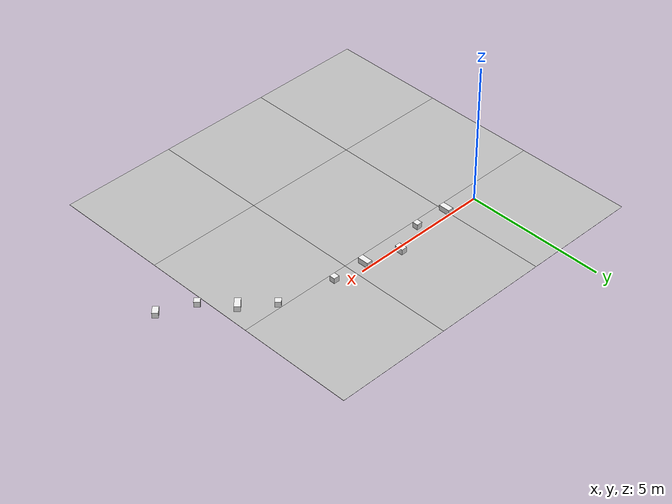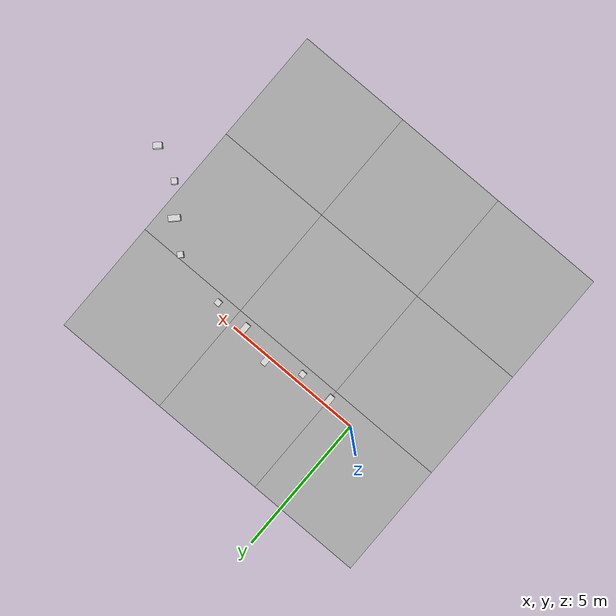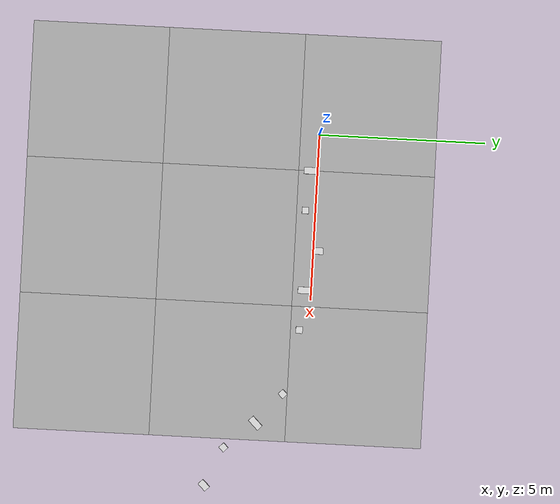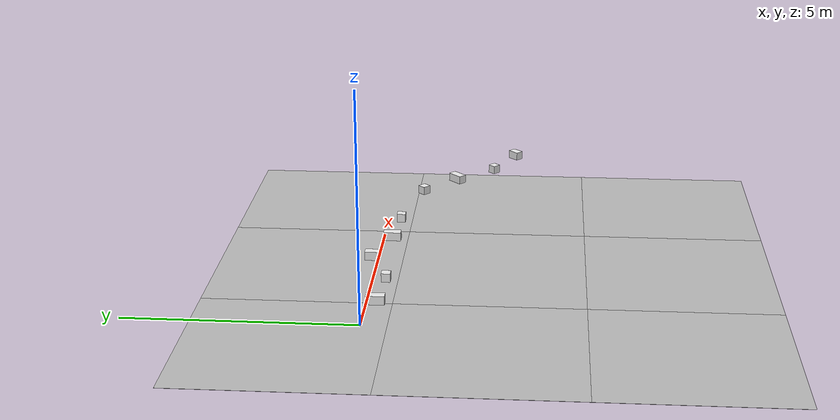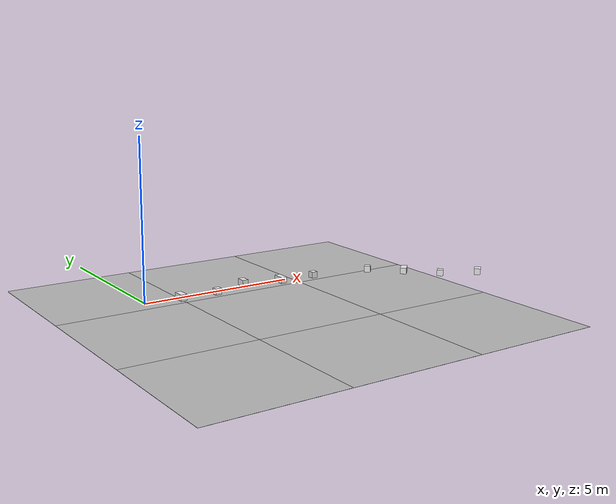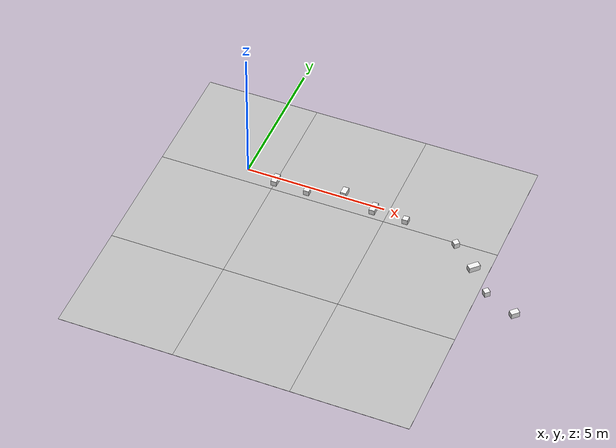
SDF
<sdf version="1.6">
 <world name="default">
  <model name="Tile/0-0">
   <static>1</static>
   <link name="link">
    <collision name="collision">
     <geometry><plane><normal>0 0 1</normal><size>4.096 4.096</size></plane></geometry>
     <surface><friction><ode><mu>100</mu><mu2>50</mu2></ode></friction></surface>
    </collision>
    <visual name="visual">
     <cast_shadows>0</cast_shadows>
     <geometry><plane><normal>0 0 1</normal><size>4.096 4.096</size></plane></geometry>
     <material>
      <script>
       <uri>file://materials/scripts</uri>
       <uri>file://materials/textures</uri>
       <name>Tile/5eab350b8220ac9944dbdfa4ac3288c7c17e24c3bf5df0dfcf6173d64dae00a1</name>
      </script>
     </material>
    </visual>
   </link>
   <pose>-0.952 -6.705231160202137 0 0 -0 0</pose>
  </model>
  <model name="Tile/0-1">
   <static>1</static>
   <link name="link">
    <collision name="collision">
     <geometry><plane><normal>0 0 1</normal><size>4.096 4.096</size></plane></geometry>
     <surface><friction><ode><mu>100</mu><mu2>50</mu2></ode></friction></surface>
    </collision>
    <visual name="visual">
     <cast_shadows>0</cast_shadows>
     <geometry><plane><normal>0 0 1</normal><size>4.096 4.096</size></plane></geometry>
     <material>
      <script>
       <uri>file://materials/scripts</uri>
       <uri>file://materials/textures</uri>
       <name>Tile/5eab350b8220ac9944dbdfa4ac3288c7c17e24c3bf5df0dfcf6173d64dae00a1</name>
      </script>
     </material>
    </visual>
   </link>
   <pose>-0.952 -2.609231160202137 0 0 -0 0</pose>
  </model>
  <model name="Tile/0-2">
   <static>1</static>
   <link name="link">
    <collision name="collision">
     <geometry><plane><normal>0 0 1</normal><size>4.096 4.096</size></plane></geometry>
     <surface><friction><ode><mu>100</mu><mu2>50</mu2></ode></friction></surface>
    </collision>
    <visual name="visual">
     <cast_shadows>0</cast_shadows>
     <geometry><plane><normal>0 0 1</normal><size>4.096 4.096</size></plane></geometry>
     <material>
      <script>
       <uri>file://materials/scripts</uri>
       <uri>file://materials/textures</uri>
       <name>Tile/40d8efbcd66bd65f30f8d94b505f15b764506128f2aa5581322fffdcda78869f</name>
      </script>
     </material>
    </visual>
   </link>
   <pose>-0.952 1.486768839797863 0 0 -0 0</pose>
  </model>
  <model name="Tile/1-0">
   <static>1</static>
   <link name="link">
    <collision name="collision">
     <geometry><plane><normal>0 0 1</normal><size>4.096 4.096</size></plane></geometry>
     <surface><friction><ode><mu>100</mu><mu2>50</mu2></ode></friction></surface>
    </collision>
    <visual name="visual">
     <cast_shadows>0</cast_shadows>
     <geometry><plane><normal>0 0 1</normal><size>4.096 4.096</size></plane></geometry>
     <material>
      <script>
       <uri>file://materials/scripts</uri>
       <uri>file://materials/textures</uri>
       <name>Tile/5eab350b8220ac9944dbdfa4ac3288c7c17e24c3bf5df0dfcf6173d64dae00a1</name>
      </script>
     </material>
    </visual>
   </link>
   <pose>3.144 -6.705231160202137 0 0 -0 0</pose>
  </model>
  <model name="Tile/1-1">
   <static>1</static>
   <link name="link">
    <collision name="collision">
     <geometry><plane><normal>0 0 1</normal><size>4.096 4.096</size></plane></geometry>
     <surface><friction><ode><mu>100</mu><mu2>50</mu2></ode></friction></surface>
    </collision>
    <visual name="visual">
     <cast_shadows>0</cast_shadows>
     <geometry><plane><normal>0 0 1</normal><size>4.096 4.096</size></plane></geometry>
     <material>
      <script>
       <uri>file://materials/scripts</uri>
       <uri>file://materials/textures</uri>
       <name>Tile/5eab350b8220ac9944dbdfa4ac3288c7c17e24c3bf5df0dfcf6173d64dae00a1</name>
      </script>
     </material>
    </visual>
   </link>
   <pose>3.144 -2.609231160202137 0 0 -0 0</pose>
  </model>
  <model name="Tile/1-2">
   <static>1</static>
   <link name="link">
    <collision name="collision">
     <geometry><plane><normal>0 0 1</normal><size>4.096 4.096</size></plane></geometry>
     <surface><friction><ode><mu>100</mu><mu2>50</mu2></ode></friction></surface>
    </collision>
    <visual name="visual">
     <cast_shadows>0</cast_shadows>
     <geometry><plane><normal>0 0 1</normal><size>4.096 4.096</size></plane></geometry>
     <material>
      <script>
       <uri>file://materials/scripts</uri>
       <uri>file://materials/textures</uri>
       <name>Tile/6bd97f919de7b52e272e37a55fad8955d563dbd5f5c95c72a86b2f3923c66cee</name>
      </script>
     </material>
    </visual>
   </link>
   <pose>3.144 1.486768839797863 0 0 -0 0</pose>
  </model>
  <model name="Tile/2-0">
   <static>1</static>
   <link name="link">
    <collision name="collision">
     <geometry><plane><normal>0 0 1</normal><size>4.096 4.096</size></plane></geometry>
     <surface><friction><ode><mu>100</mu><mu2>50</mu2></ode></friction></surface>
    </collision>
    <visual name="visual">
     <cast_shadows>0</cast_shadows>
     <geometry><plane><normal>0 0 1</normal><size>4.096 4.096</size></plane></geometry>
     <material>
      <script>
       <uri>file://materials/scripts</uri>
       <uri>file://materials/textures</uri>
       <name>Tile/5eab350b8220ac9944dbdfa4ac3288c7c17e24c3bf5df0dfcf6173d64dae00a1</name>
      </script>
     </material>
    </visual>
   </link>
   <pose>7.24 -6.705231160202137 0 0 -0 0</pose>
  </model>
  <model name="Tile/2-1">
   <static>1</static>
   <link name="link">
    <collision name="collision">
     <geometry><plane><normal>0 0 1</normal><size>4.096 4.096</size></plane></geometry>
     <surface><friction><ode><mu>100</mu><mu2>50</mu2></ode></friction></surface>
    </collision>
    <visual name="visual">
     <cast_shadows>0</cast_shadows>
     <geometry><plane><normal>0 0 1</normal><size>4.096 4.096</size></plane></geometry>
     <material>
      <script>
       <uri>file://materials/scripts</uri>
       <uri>file://materials/textures</uri>
       <name>Tile/9bd0c5d2d89726602c7563d4596b4fb52d1183fe403cb2a13fc1b9ff619df0d2</name>
      </script>
     </material>
    </visual>
   </link>
   <pose>7.24 -2.609231160202137 0 0 -0 0</pose>
  </model>
  <model name="Tile/2-2">
   <static>1</static>
   <link name="link">
    <collision name="collision">
     <geometry><plane><normal>0 0 1</normal><size>4.096 4.096</size></plane></geometry>
     <surface><friction><ode><mu>100</mu><mu2>50</mu2></ode></friction></surface>
    </collision>
    <visual name="visual">
     <cast_shadows>0</cast_shadows>
     <geometry><plane><normal>0 0 1</normal><size>4.096 4.096</size></plane></geometry>
     <material>
      <script>
       <uri>file://materials/scripts</uri>
       <uri>file://materials/textures</uri>
       <name>Tile/4b288df7ab78ec87784593fc9d0b1a64127da0df1f6824814ff8be3abee6b320</name>
      </script>
     </material>
    </visual>
   </link>
   <pose>7.24 1.486768839797863 0 0 -0 0</pose>
  </model>
  <model name="Obstacle/-5/0">
   <pose>1.1 -0.2 0.1 0 0 -0.0</pose>
   <link name="link">
    <inertial>
     <mass>10</mass>
     <inertia>
      <ixx>0.166667</ixx>
      <ixy>0</ixy>
      <ixz>0</ixz>
      <iyy>0.166667</iyy>
      <iyz>0</iyz>
      <izz>0.166667</izz>
     </inertia>
    </inertial>
    <collision name="collision"><geometry><box><size>0.2 0.4 0.2</size></box></geometry></collision>
    <visual name="visual">
     <geometry><box><size>0.2 0.4 0.2</size></box></geometry>
     <material>
      <script><name>Gazebo/White</name><uri>file://media/materials/scripts/gazebo.material</uri></script>
     </material>
    </visual>
   </link>
  </model>
  <model name="Obstacle/-10/0">
   <pose>2.3000000000000003 -0.30000000000000004 0.1 0 0 -0.0</pose>
   <link name="link">
    <inertial>
     <mass>10</mass>
     <inertia>
      <ixx>0.166667</ixx>
      <ixy>0</ixy>
      <ixz>0</ixz>
      <iyy>0.166667</iyy>
      <iyz>0</iyz>
      <izz>0.166667</izz>
     </inertia>
    </inertial>
    <collision name="collision"><geometry><box><size>0.2 0.2 0.2</size></box></geometry></collision>
    <visual name="visual">
     <geometry><box><size>0.2 0.2 0.2</size></box></geometry>
     <material>
      <script><name>Gazebo/White</name><uri>file://media/materials/scripts/gazebo.material</uri></script>
     </material>
    </visual>
   </link>
  </model>
  <model name="Obstacle/-15/0">
   <pose>3.5000000000000004 0.15 0.1 0 0 -0.0</pose>
   <link name="link">
    <inertial>
     <mass>10</mass>
     <inertia>
      <ixx>0.166667</ixx>
      <ixy>0</ixy>
      <ixz>0</ixz>
      <iyy>0.166667</iyy>
      <iyz>0</iyz>
      <izz>0.166667</izz>
     </inertia>
    </inertial>
    <collision name="collision"><geometry><box><size>0.2 0.3 0.2</size></box></geometry></collision>
    <visual name="visual">
     <geometry><box><size>0.2 0.3 0.2</size></box></geometry>
     <material>
      <script><name>Gazebo/White</name><uri>file://media/materials/scripts/gazebo.material</uri></script>
     </material>
    </visual>
   </link>
  </model>
  <model name="Obstacle/-20/0">
   <pose>4.7 -0.2 0.1 0 0 -0.0</pose>
   <link name="link">
    <inertial>
     <mass>10</mass>
     <inertia>
      <ixx>0.166667</ixx>
      <ixy>0</ixy>
      <ixz>0</ixz>
      <iyy>0.166667</iyy>
      <iyz>0</iyz>
      <izz>0.166667</izz>
     </inertia>
    </inertial>
    <collision name="collision"><geometry><box><size>0.2 0.4 0.2</size></box></geometry></collision>
    <visual name="visual">
     <geometry><box><size>0.2 0.4 0.2</size></box></geometry>
     <material>
      <script><name>Gazebo/White</name><uri>file://media/materials/scripts/gazebo.material</uri></script>
     </material>
    </visual>
   </link>
  </model>
  <model name="Obstacle/-25/0">
   <pose>5.9 -0.30000000000000004 0.1 0 0 -0.0</pose>
   <link name="link">
    <inertial>
     <mass>10</mass>
     <inertia>
      <ixx>0.166667</ixx>
      <ixy>0</ixy>
      <ixz>0</ixz>
      <iyy>0.166667</iyy>
      <iyz>0</iyz>
      <izz>0.166667</izz>
     </inertia>
    </inertial>
    <collision name="collision"><geometry><box><size>0.2 0.2 0.2</size></box></geometry></collision>
    <visual name="visual">
     <geometry><box><size>0.2 0.2 0.2</size></box></geometry>
     <material>
      <script><name>Gazebo/White</name><uri>file://media/materials/scripts/gazebo.material</uri></script>
     </material>
    </visual>
   </link>
  </model>
  <model name="Obstacle/-32/0">
   <pose>7.848528137423858 -0.6928932188134527 0.1 0 0 -0.7853981633974483</pose>
   <link name="link">
    <inertial>
     <mass>10</mass>
     <inertia>
      <ixx>0.166667</ixx>
      <ixy>0</ixy>
      <ixz>0</ixz>
      <iyy>0.166667</iyy>
      <iyz>0</iyz>
      <izz>0.166667</izz>
     </inertia>
    </inertial>
    <collision name="collision"><geometry><box><size>0.2 0.2 0.2</size></box></geometry></collision>
    <visual name="visual">
     <geometry><box><size>0.2 0.2 0.2</size></box></geometry>
     <material>
      <script><name>Gazebo/White</name><uri>file://media/materials/scripts/gazebo.material</uri></script>
     </material>
    </visual>
   </link>
  </model>
  <model name="Obstacle/-37/0">
   <pose>8.76776695296637 -1.4707106781186547 0.1 0 0 -0.7853981633974483</pose>
   <link name="link">
    <inertial>
     <mass>10</mass>
     <inertia>
      <ixx>0.166667</ixx>
      <ixy>0</ixy>
      <ixz>0</ixz>
      <iyy>0.166667</iyy>
      <iyz>0</iyz>
      <izz>0.166667</izz>
     </inertia>
    </inertial>
    <collision name="collision"><geometry><box><size>0.2 0.4 0.2</size></box></geometry></collision>
    <visual name="visual">
     <geometry><box><size>0.2 0.4 0.2</size></box></geometry>
     <material>
      <script><name>Gazebo/White</name><uri>file://media/materials/scripts/gazebo.material</uri></script>
     </material>
    </visual>
   </link>
  </model>
  <model name="Obstacle/-42/0">
   <pose>9.545584412271573 -2.3899494936611663 0.1 0 0 -0.7853981633974483</pose>
   <link name="link">
    <inertial>
     <mass>10</mass>
     <inertia>
      <ixx>0.166667</ixx>
      <ixy>0</ixy>
      <ixz>0</ixz>
      <iyy>0.166667</iyy>
      <iyz>0</iyz>
      <izz>0.166667</izz>
     </inertia>
    </inertial>
    <collision name="collision"><geometry><box><size>0.2 0.2 0.2</size></box></geometry></collision>
    <visual name="visual">
     <geometry><box><size>0.2 0.2 0.2</size></box></geometry>
     <material>
      <script><name>Gazebo/White</name><uri>file://media/materials/scripts/gazebo.material</uri></script>
     </material>
    </visual>
   </link>
  </model>
  <model name="Obstacle/-47/0">
   <pose>10.712310601229376 -2.920279579551077 0.1 0 0 -0.7853981633974483</pose>
   <link name="link">
    <inertial>
     <mass>10</mass>
     <inertia>
      <ixx>0.166667</ixx>
      <ixy>0</ixy>
      <ixz>0</ixz>
      <iyy>0.166667</iyy>
      <iyz>0</iyz>
      <izz>0.166667</izz>
     </inertia>
    </inertial>
    <collision name="collision"><geometry><box><size>0.2 0.3 0.2</size></box></geometry></collision>
    <visual name="visual">
     <geometry><box><size>0.2 0.3 0.2</size></box></geometry>
     <material>
      <script><name>Gazebo/White</name><uri>file://media/materials/scripts/gazebo.material</uri></script>
     </material>
    </visual>
   </link>
  </model>
 </world>
</sdf>
